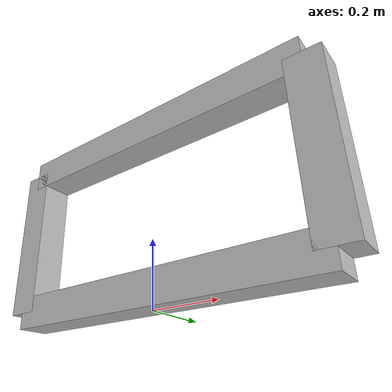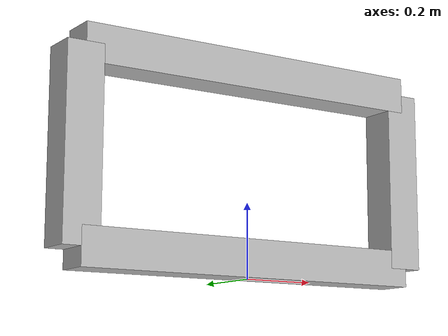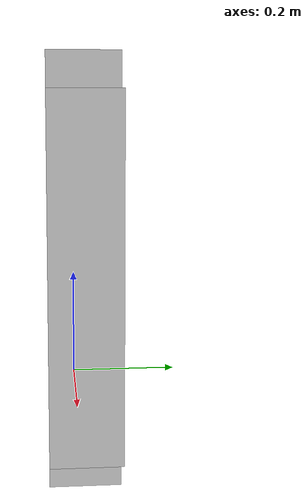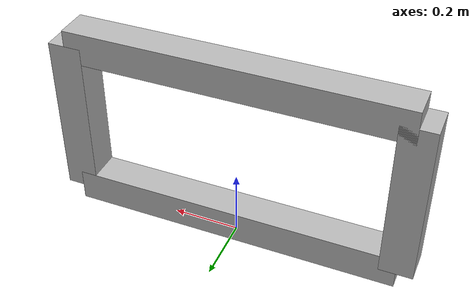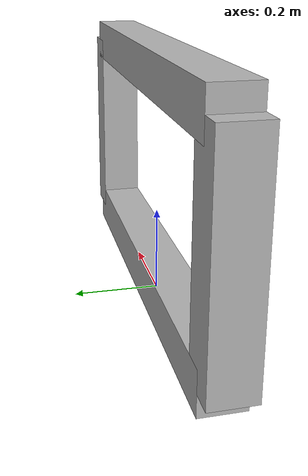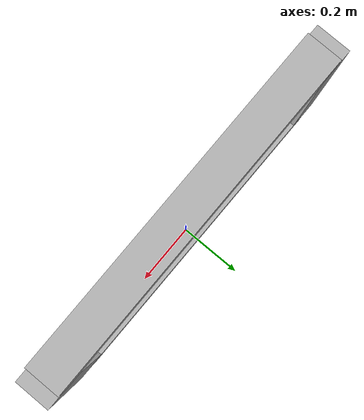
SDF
<?xml version='1.0'?>
<sdf version='1.4'>
 <model name="four_bar">
    <static>false</static>
    <pose>0 0 0.05 0 0 0</pose>
    <link name='base_link'>
      <pose>0.0 0 0.0 0 0 0</pose>
      <self_collide>1</self_collide>
      <collision name='base_link_collision'>
        <geometry>
          <box>
            <size>0.9 .1 .1</size>
          </box>
        </geometry>
      </collision>
      <visual name='base_link_visual'>
        <geometry>
          <box>
            <size>1.0 .1 .1</size>
          </box>
        </geometry>
      </visual>
      <inertial>
        <pose>0 0 0 0 0 0</pose>
        <mass>10</mass>
        <inertia>
          <ixx>0.1</ixx>
          <ixy>0.0</ixy>
          <ixz>0.0</ixz>
          <iyy>1.0</iyy>
          <iyz>0.0</iyz>
          <izz>1.0</izz>
        </inertia>
      </inertial>
    </link>
    <link name='input_link'>
      <pose>-0.5 0 0.25 0 0 0</pose>
      <self_collide>1</self_collide>
      <collision name='input_link_collision'>
        <geometry>
          <box>
            <size>.1 .1 0.4</size>
          </box>
        </geometry>
      </collision>
      <visual name='input_link_visual'>
        <geometry>
          <box>
            <size>.1 .1 0.5</size>
          </box>
        </geometry>
      </visual>
      <inertial>
        <pose>0 0 0 0 0 0</pose>
        <mass>10</mass>
        <inertia>
          <ixx>1.0</ixx>
          <ixy>0.0</ixy>
          <ixz>0.0</ixz>
          <iyy>1.0</iyy>
          <iyz>0.0</iyz>
          <izz>0.1</izz>
        </inertia>
      </inertial>
    </link>
    <link name='output_link'>
      <pose>0.5 0 0.25 0 0 0</pose>
      <self_collide>1</self_collide>
      <collision name='output_link_collision'>
        <geometry>
          <box>
            <size>.1 .1 0.4</size>
          </box>
        </geometry>
      </collision>
      <visual name='output_link_visual'>
        <geometry>
          <box>
            <size>.1 .1 0.5</size>
          </box>
        </geometry>
      </visual>
      <inertial>
        <pose>0 0 0 0 0 0</pose>
        <mass>10</mass>
        <inertia>
          <ixx>1.0</ixx>
          <ixy>0.0</ixy>
          <ixz>0.0</ixz>
          <iyy>1.0</iyy>
          <iyz>0.0</iyz>
          <izz>0.1</izz>
        </inertia>
      </inertial>
    </link>
    <link name='floating_link'>
      <pose>0.0 0 0.5 0 0 0</pose>
      <self_collide>1</self_collide>
      <collision name='floating_link_collision'>
        <geometry>
          <box>
            <size>0.9 .1 .1</size>
          </box>
        </geometry>
      </collision>
      <visual name='floating_link_visual'>
        <geometry>
          <box>
            <size>1.0 .1 .1</size>
          </box>
        </geometry>
      </visual>
      <inertial>
        <pose>0 0 0 0 0 0</pose>
        <mass>10</mass>
        <inertia>
          <ixx>0.1</ixx>
          <ixy>0.0</ixy>
          <ixz>0.0</ixz>
          <iyy>1.0</iyy>
          <iyz>0.0</iyz>
          <izz>1.0</izz>
        </inertia>
      </inertial>
    </link>
    <joint type="revolute" name="world_to_base">
      <child>base_link</child>
      <parent>world</parent>
      <axis>
        <xyz>0 0 1</xyz>
        <limit>
          <upper>0</upper>
          <lower>0</lower>
        </limit>
      </axis>
    </joint>
    <joint type="ball" name="base_to_input">
      <pose>0 0 -0.25 0 0 0</pose>
      <child>input_link</child>
      <parent>base_link</parent>
      <axis>
        <xyz>0 1 0</xyz>
      </axis>
    </joint>
    <joint type="ball" name="input_to_floating">
      <pose>-0.5 0 0 0 0 0</pose>
      <child>floating_link</child>
      <parent>input_link</parent>
      <axis>
        <xyz>0 1 0</xyz>
      </axis>
    </joint>
    <joint type="ball" name="floating_to_output">
      <pose>0 0 0.25 0 0 0</pose>
      <child>output_link</child>
      <parent>floating_link</parent>
      <axis>
        <xyz>0 1 0</xyz>
      </axis>
    </joint>
    <joint type="ball" name="output_to_base">
      <pose>0.5 0 0 0 0 0</pose>
      <child>base_link</child>
      <parent>output_link</parent>
      <axis>
        <xyz>0 1 0</xyz>
      </axis>
    </joint>
  </model>
</sdf>
